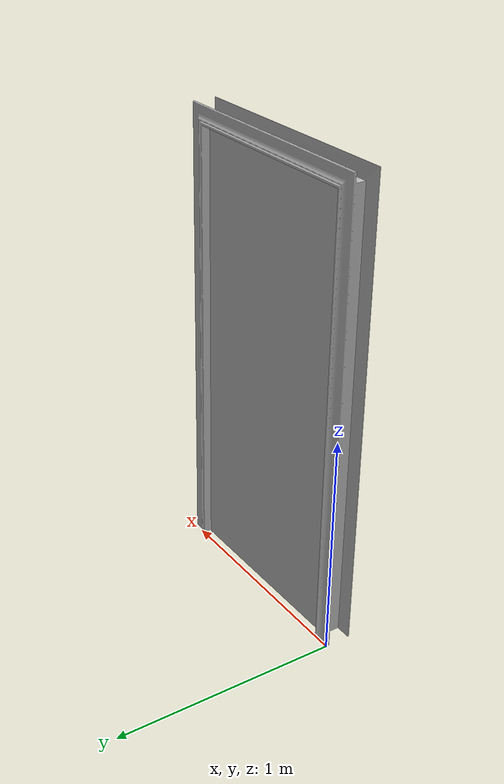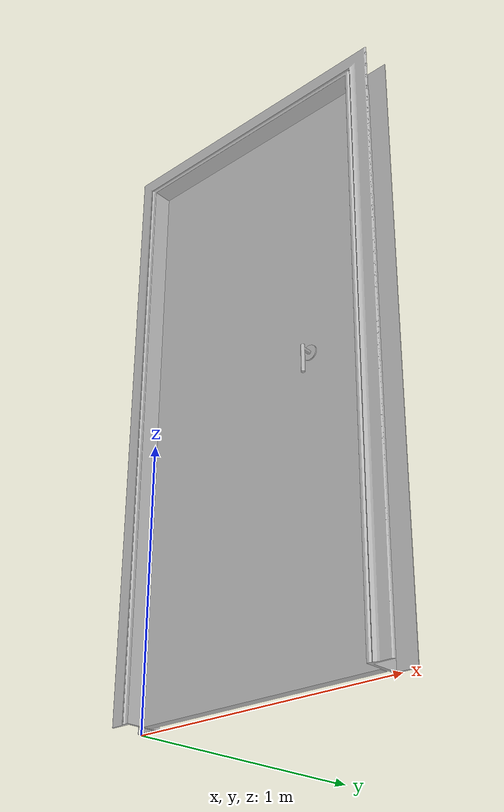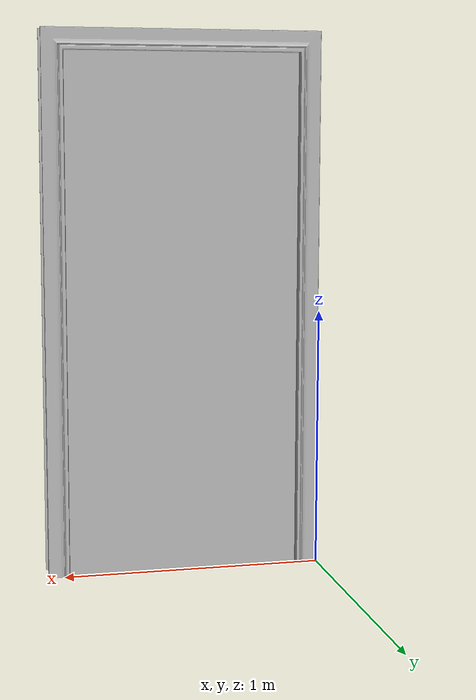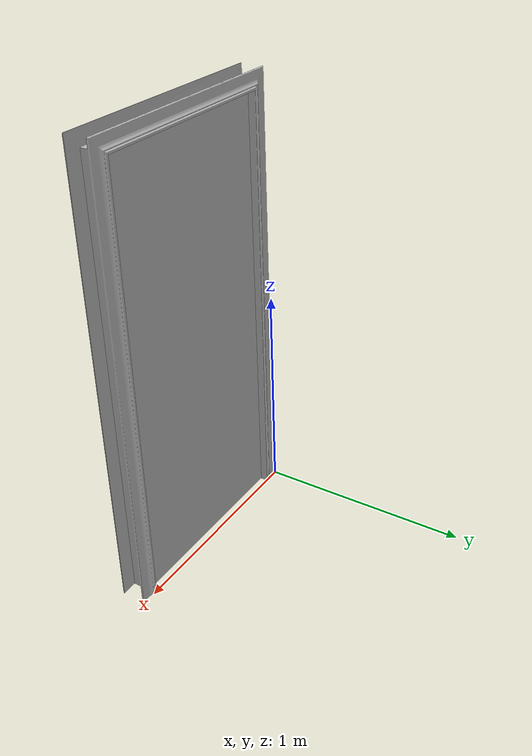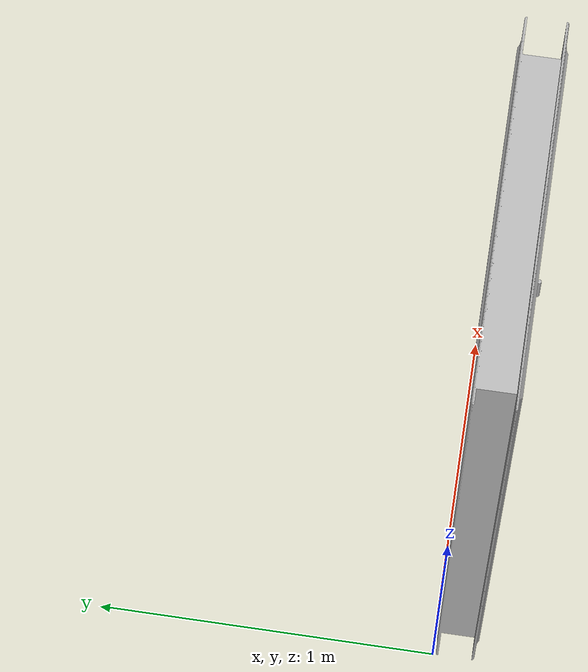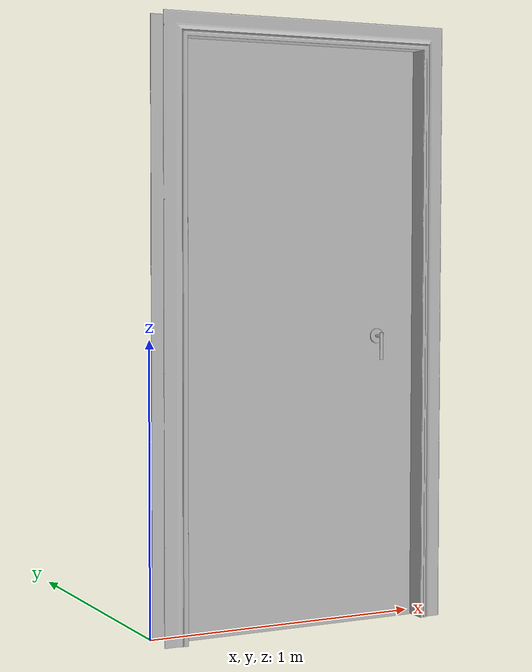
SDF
<sdf version="1.4">
    <model name="door">
        <pose>0 0 0 1.5708 0 0</pose>

        <link name="door_frame">
            <inertial>
                <pose>0.525 1 0.05 0 0 0</pose>
                <mass>30.0</mass>
                <inertia>
                    <ixx>1</ixx>
                    <ixy>0.0</ixy>
                    <ixz>0.0</ixz>
                    <iyy>1</iyy>
                    <iyz>0.0</iyz>
                    <izz>1</izz>
                </inertia>
            </inertial>

            <collision name="collision_frame">
                <pose>0 0 0 0 0 0</pose>
                <geometry>
                    <mesh>
                        <uri>model://door/meshes/frame.stl</uri>
	                    <scale> 0.1 0.1 0.1 </scale>
                    </mesh>
                </geometry>
            </collision>

            <visual name="visual_frame">
                <pose>0 0 0 0 0 0</pose>
                <geometry>
                    <mesh>
                        <uri>model://door/meshes/frame.stl</uri>
	                    <scale> 0.1 0.1 0.1 </scale>
                    </mesh>
                </geometry>
            </visual>
        </link>

        <link name="door_body">
            <inertial>
                <pose>0.525 1 0.05 0 0 0</pose>
                <mass>1.0</mass>
                <inertia>
                    <ixx>0.083</ixx>
                    <ixy>0.0</ixy>
                    <ixz>0.0</ixz>
                    <iyy>0.083</iyy>
                    <iyz>0.0</iyz>
                    <izz>0.083</izz>
                </inertia>
            </inertial>

            <collision name="collision_door">
                <pose>0.525 0.995 0.05 0 0 0</pose>
                <geometry>
                    <box>
                        <size>0.9 1.99 0.03</size>
                    </box>
                </geometry>
            </collision>

            <visual name="visual_door">
                <pose>0.525 0.995 0.05 0 0 0</pose>
                <geometry>
                    <box>
                        <size>0.9 1.99 0.03</size>
                    </box>
                </geometry>
            </visual>
        </link>

        <link name="door_handle">
            <inertial>
                <pose>0.8 1.0 0.15 3.1416 0 0</pose>
                <mass>1.0</mass>
                <inertia>
                    <ixx>1</ixx>
                    <ixy>0.0</ixy>
                    <ixz>0.0</ixz>
                    <iyy>1</iyy>
                    <iyz>0.0</iyz>
                    <izz>1</izz>
                </inertia>
            </inertial>

            <collision name="collision_handle">
                <pose>0.8 1.0 0.15 3.1416 0 0</pose>
                <geometry>
                    <mesh>
                        <uri>model://door/meshes/handle.stl</uri>
	                    <scale> 0.001 0.001 0.001 </scale>
                    </mesh>
                </geometry>
            </collision>

            <visual name="visual_handle">
                <pose>0.8 1.0 0.15 3.1416 0 0</pose>
                <geometry>
                    <mesh>
                        <uri>model://door/meshes/handle.stl</uri>
	                    <scale> 0.001 0.001 0.001 </scale>
                    </mesh>
                </geometry>
            </visual>
        </link>

        <joint name="door_handle_joint" type="revolute">
            <parent>door_body</parent>
            <child>door_handle</child>
            <pose>0.075 0 0.065 0 0 0</pose>
            <axis>
                <xyz>0 1 0</xyz>
	            <limit>
	                <lower>0.0</lower>
	                <upper>0.0</upper>
	            </limit>
            </axis>
        </joint>

        <joint name="door_hinge" type="revolute">
            <parent>door_frame</parent>
            <child>door_body</child>
            <pose>0.075 0 0.065 0 0 0</pose>
            <axis>
                <xyz>0 1 0</xyz>
                <dynamics>
                    <damping>0.1</damping>
                    <friction>0.1</friction>
                </dynamics>
            </axis>
        </joint>

        <joint name="world_joint" type="revolute">
            <child>door_frame</child>
            <parent>world</parent>
            <axis>
                <limit>
                    <lower>0</lower>
                    <upper>0</upper>
                </limit>
                <xyz>0 1 0</xyz>
                <dynamics>
                    <damping>1.0</damping>
                </dynamics>
                <use_parent_model_frame>true</use_parent_model_frame>
            </axis>
            <physics>
                <ode>
                    <cfm_damping>1</cfm_damping>
                </ode>
            </physics>
        </joint>

    </model>
</sdf>
